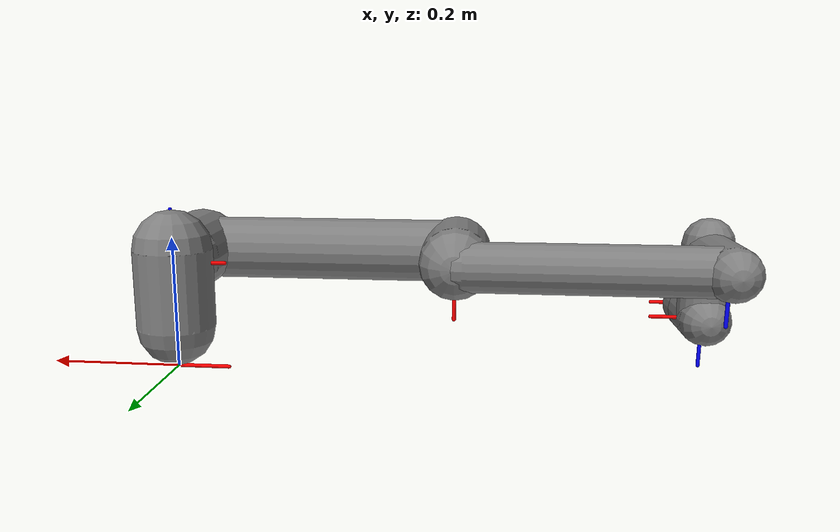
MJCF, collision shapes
<mujoco model="ur5e">
  <compiler angle="radian" meshdir="assets" autolimits="true"/>
  <option integrator="implicitfast"/>
  <default>
    <default class="ur5e">
      <material specular="0.5" shininess="0.25"/>
      <joint axis="0 1 0" range="-6.28319 6.28319" armature="0.1"/>
      <general gaintype="fixed" biastype="affine" ctrlrange="-6.2831 6.2831" gainprm="2000" biasprm="0 -2000 -400"
        forcerange="-150 150"/>
      <default class="size3">
        <default class="size3_limited">
          <joint range="-3.1415 3.1415"/>
          <general ctrlrange="-3.1415 3.1415"/>
        </default>
      </default>
      <default class="size1">
        <general gainprm="500" biasprm="0 -500 -100" forcerange="-28 28"/>
      </default>
      <default class="visual">
        <geom type="mesh" contype="0" conaffinity="0" group="2"/>
      </default>
      <default class="collision">
        <geom type="capsule" group="3"/>
        <default class="eef_collision">
          <geom type="cylinder"/>
        </default>
      </default>
      <site size="0.001" rgba="0.5 0.5 0.5 0.3" group="4"/>
    </default>
  </default>
  <asset>
    <material class="ur5e" name="black" rgba="0.033 0.033 0.033 1"/>
    <material class="ur5e" name="jointgray" rgba="0.278 0.278 0.278 1"/>
    <material class="ur5e" name="linkgray" rgba="0.82 0.82 0.82 1"/>
    <material class="ur5e" name="urblue" rgba="0.49 0.678 0.8 1"/>
    <mesh file="base_0.obj"/>
    <mesh file="base_1.obj"/>
    <mesh file="shoulder_0.obj"/>
    <mesh file="shoulder_1.obj"/>
    <mesh file="shoulder_2.obj"/>
    <mesh file="upperarm_0.obj"/>
    <mesh file="upperarm_1.obj"/>
    <mesh file="upperarm_2.obj"/>
    <mesh file="upperarm_3.obj"/>
    <mesh file="forearm_0.obj"/>
    <mesh file="forearm_1.obj"/>
    <mesh file="forearm_2.obj"/>
    <mesh file="forearm_3.obj"/>
    <mesh file="wrist1_0.obj"/>
    <mesh file="wrist1_1.obj"/>
    <mesh file="wrist1_2.obj"/>
    <mesh file="wrist2_0.obj"/>
    <mesh file="wrist2_1.obj"/>
    <mesh file="wrist2_2.obj"/>
    <mesh file="wrist3.obj"/>
  </asset>
  <worldbody>
    <light name="spotlight" mode="targetbodycom" target="wrist_2_link" pos="0 -1 2"/>
    <body name="base" quat="0 0 0 -1" childclass="ur5e">
      <inertial mass="4.0" pos="0 0 0" diaginertia="0.00443333156 0.00443333156 0.0072"/>
      <!-- Reference frame: base -->
      <geom type="capsule" fromto="0 0 0 0.08 0 0" rgba="1 0 0 1" size="0.003"/>
      <geom type="capsule" fromto="0 0 0 0 0.08 0" rgba="0 1 0 1" size="0.003"/>
      <geom type="capsule" fromto="0 0 0 0 0 0.08" rgba="0 0 1 1" size="0.003"/>
      <geom mesh="base_0" material="black" class="visual"/>
      <geom mesh="base_1" material="jointgray" class="visual"/>
      <body name="shoulder_link" pos="0 0 0.163">
        <inertial mass="3.7" pos="0 0 0" diaginertia="0.0102675 0.0102675 0.00666"/>
        <!-- Reference frame: shoulder_link -->
        <geom type="capsule" fromto="0 0 0 0.08 0 0" rgba="1 0 0 1" size="0.003"/>
        <geom type="capsule" fromto="0 0 0 0 0.08 0" rgba="0 1 0 1" size="0.003"/>
        <geom type="capsule" fromto="0 0 0 0 0 0.08" rgba="0 0 1 1" size="0.003"/>
        <joint name="shoulder_pan_joint" class="size3" axis="0 0 1"/>
        <geom mesh="shoulder_0" material="urblue" class="visual"/>
        <geom mesh="shoulder_1" material="black" class="visual"/>
        <geom mesh="shoulder_2" material="jointgray" class="visual"/>
        <geom class="collision" size="0.06 0.06" pos="0 0 -0.04"/>
        <body name="upper_arm_link" pos="0 0.138 0" quat="1 0 1 0">
          <inertial mass="8.393" pos="0 0 0.2125" diaginertia="0.133886 0.133886 0.0151074"/>
          <!-- Reference frame: upper_arm_link -->
          <geom type="capsule" fromto="0 0 0 0.08 0 0" rgba="1 0 0 1" size="0.003"/>
          <geom type="capsule" fromto="0 0 0 0 0.08 0" rgba="0 1 0 1" size="0.003"/>
          <geom type="capsule" fromto="0 0 0 0 0 0.08" rgba="0 0 1 1" size="0.003"/>
          <joint name="shoulder_lift_joint" class="size3"/>
          <geom mesh="upperarm_0" material="linkgray" class="visual"/>
          <geom mesh="upperarm_1" material="black" class="visual"/>
          <geom mesh="upperarm_2" material="jointgray" class="visual"/>
          <geom mesh="upperarm_3" material="urblue" class="visual"/>
          <geom class="collision" pos="0 -0.04 0" quat="1 1 0 0" size="0.06 0.06"/>
          <geom class="collision" size="0.05 0.2" pos="0 0 0.2"/>
          <body name="forearm_link" pos="0 -0.131 0.425">
            <inertial mass="2.275" pos="0 0 0.196" diaginertia="0.0311796 0.0311796 0.004095"/>
            <!-- Reference frame: forearm_link -->
            <geom type="capsule" fromto="0 0 0 0.08 0 0" rgba="1 0 0 1" size="0.003"/>
            <geom type="capsule" fromto="0 0 0 0 0.08 0" rgba="0 1 0 1" size="0.003"/>
            <geom type="capsule" fromto="0 0 0 0 0 0.08" rgba="0 0 1 1" size="0.003"/>
            <joint name="elbow_joint" class="size3_limited"/>
            <geom mesh="forearm_0" material="urblue" class="visual"/>
            <geom mesh="forearm_1" material="linkgray" class="visual"/>
            <geom mesh="forearm_2" material="black" class="visual"/>
            <geom mesh="forearm_3" material="jointgray" class="visual"/>
            <geom class="collision" pos="0 0.08 0" quat="1 1 0 0" size="0.055 0.06"/>
            <geom class="collision" size="0.038 0.19" pos="0 0 0.2"/>
            <body name="wrist_1_link" pos="0 0 0.392" quat="1 0 1 0">
              <inertial mass="1.219" pos="0 0.127 0" diaginertia="0.0025599 0.0025599 0.0021942"/>
              <!-- Reference frame: wrist_1_link -->
              <geom type="capsule" fromto="0 0 0 0.08 0 0" rgba="1 0 0 1" size="0.003"/>
              <geom type="capsule" fromto="0 0 0 0 0.08 0" rgba="0 1 0 1" size="0.003"/>
              <geom type="capsule" fromto="0 0 0 0 0 0.08" rgba="0 0 1 1" size="0.003"/>
              <joint name="wrist_1_joint" class="size1"/>
              <geom mesh="wrist1_0" material="black" class="visual"/>
              <geom mesh="wrist1_1" material="urblue" class="visual"/>
              <geom mesh="wrist1_2" material="jointgray" class="visual"/>
              <geom class="collision" pos="0 0.05 0" quat="1 1 0 0" size="0.04 0.07"/>
              <body name="wrist_2_link" pos="0 0.127 0">
                <inertial mass="1.219" pos="0 0 0.1" diaginertia="0.0025599 0.0025599 0.0021942"/>
                <!-- Reference frame: wrist_2_link -->
                <geom type="capsule" fromto="0 0 0 0.08 0 0" rgba="1 0 0 1" size="0.003"/>
                <geom type="capsule" fromto="0 0 0 0 0.08 0" rgba="0 1 0 1" size="0.003"/>
                <geom type="capsule" fromto="0 0 0 0 0 0.08" rgba="0 0 1 1" size="0.003"/>
                <joint name="wrist_2_joint" axis="0 0 1" class="size1"/>
                <geom mesh="wrist2_0" material="black" class="visual"/>
                <geom mesh="wrist2_1" material="urblue" class="visual"/>
                <geom mesh="wrist2_2" material="jointgray" class="visual"/>
                <geom class="collision" size="0.04 0.06" pos="0 0 0.04"/>
                <geom class="collision" pos="0 0.02 0.1" quat="1 1 0 0" size="0.04 0.04"/>
                <body name="wrist_3_link" pos="0 0 0.1">
                  <inertial mass="0.1889" pos="0 0.0771683 0" quat="1 0 0 1"
                    diaginertia="0.000132134 9.90863e-05 9.90863e-05"/>
                  <!-- Reference frame: wrist_3_link -->
                  <geom type="capsule" fromto="0 0 0 0.08 0 0" rgba="1 0 0 1" size="0.003"/>
                  <geom type="capsule" fromto="0 0 0 0 0.08 0" rgba="0 1 0 1" size="0.003"/>
                  <geom type="capsule" fromto="0 0 0 0 0 0.08" rgba="0 0 1 1" size="0.003"/>
                  <joint name="wrist_3_joint" class="size1"/>
                  <geom material="linkgray" mesh="wrist3" class="visual"/>
                  <geom class="eef_collision" pos="0 0.08 0" quat="1 1 0 0" size="0.04 0.02"/>
                  <site name="ee_site" pos="0 0.1 0" quat="0.7071 -0.7071 0 0"/>
                  <body name="ee_frame_visual_only" pos="0 0.1 0" quat="0.7071 -0.7071 0 0">
                      <geom type="capsule" fromto="0 0 0 0.05 0 0" rgba="1 0 0 1" size="0.002"/>
                      <geom type="capsule" fromto="0 0 0 0 0.05 0" rgba="0 1 0 1" size="0.002"/>
                      <geom type="capsule" fromto="0 0 0 0 0 0.05" rgba="0 0 1 1" size="0.002"/>
                      <body name="tool_frame" pos="0 0 0" quat="1 0 0 0">
                        <site name="tool_site" pos="0 0 0" quat="1 0 0 0"/>
                        <geom type="capsule" fromto="0 0 0 0.06 0 0" rgba="1 0 0 1" size="0.003"/>
                        <geom type="capsule" fromto="0 0 0 0 0.06 0" rgba="0 1 0 1" size="0.003"/>
                        <geom type="capsule" fromto="0 0 0 0 0 0.06" rgba="0 0 1 1" size="0.003"/>
                    </body>
                  </body>
                </body>
              </body>
            </body>
          </body>
        </body>
      </body>
    </body>
  </worldbody>
  <actuator>
    <motor joint="shoulder_pan_joint" gear="1" forcerange="-300 300"/>
    <motor joint="shoulder_lift_joint" gear="1" forcerange="-300 300"/>
    <motor joint="elbow_joint" gear="1" forcerange="-300 300"/>
    <motor joint="wrist_1_joint" gear="1" forcerange="-300 300"/>
    <motor joint="wrist_2_joint" gear="1" forcerange="-300 300"/>
    <motor joint="wrist_3_joint" gear="1" forcerange="-300 300"/>
  </actuator>
  <keyframe>
    <key name="home" qpos="-1.5708 -1.5708 1.5708 -1.5708 -1.5708 0" ctrl="-1.5708 -1.5708 1.5708 -1.5708 -1.5708 0"/>
  </keyframe>
</mujoco>
